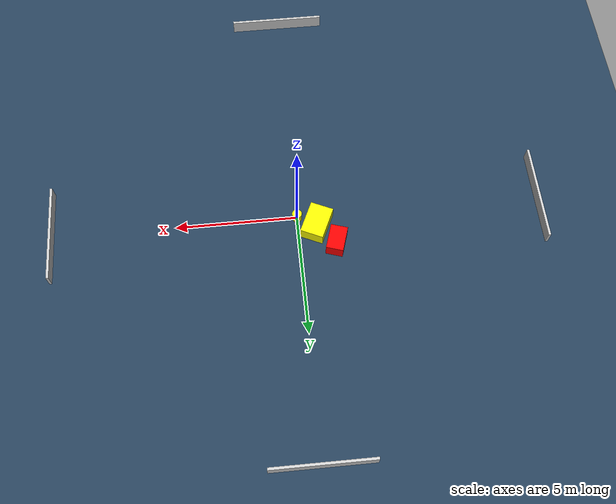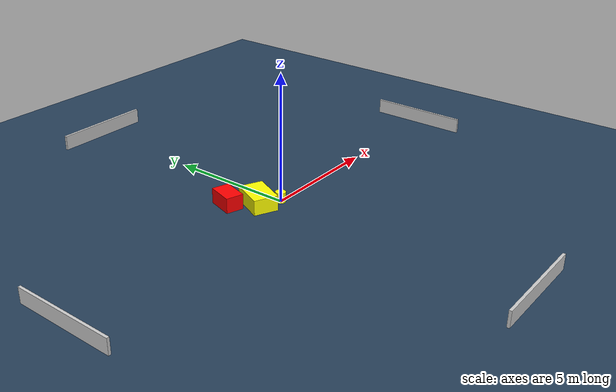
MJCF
<?xml version="1.0" ?>
<mujoco model="generated_environment">
  <option timestep="0.01" integrator="RK4" cone="elliptic"/>
  <default>
    <geom density="1"/>
  </default>
  <asset>
    <texture builtin="gradient" height="3072" name="skybox" rgb1="0.3 0.5 0.7" rgb2="0 0 0" type="skybox" width="512"/>
    <texture builtin="checker" height="300" name="groundplane" rgb1="0.2 0.3 0.4" rgb2="0.1 0.2 0.3" type="2d" width="300"/>
    <material name="groundplane" reflectance="0.2" texrepeat="5 5" texture="groundplane"/>
  </asset>
  <worldbody>
    <light dir="0 0 -1" directional="true" pos="0 0 1.5"/>
    <geom condim="3" friction="0.5 0.005 0.001" material="groundplane" name="floor" pos="0 0 0" size="0 0 0.05" type="plane"/>
    <body name="walls">
      <geom name="wall_1" condim="4" pos="-10.0 0.0 0.3" rgba="0.800000011920929 0.800000011920929 0.800000011920929 1.0" size="0.05 2.0 0.3" type="box"/>
      <geom name="wall_2" condim="4" pos="10.0 0.0 0.3" rgba="0.800000011920929 0.800000011920929 0.800000011920929 1.0" size="0.05 2.0 0.3" type="box"/>
      <geom name="wall_3" condim="4" pos="0.0 -10.0 0.3" rgba="0.800000011920929 0.800000011920929 0.800000011920929 1.0" size="2.0 0.05 0.3" type="box"/>
      <geom name="wall_4" condim="4" pos="0.0 10.0 0.3" rgba="0.800000011920929 0.800000011920929 0.800000011920929 1.0" size="2.0 0.05 0.3" type="box"/>
    </body>
    <body name="robot">
      <joint name="joint_x" type="slide" pos="0 0 0" axis="1 0 0"/>
      <joint name="joint_y" type="slide" pos="0 0 0" axis="0 1 0"/>
      <geom name="robot" type="cylinder" pos="0.0 0.0 0.2" size="0.2 0.2 0.0" mass="5.0" friction="1.0 0.005 0.0001" condim="4" rgba="1.0 1.0 0.0 1.0"/>
    </body>
    <body name="obstacle_1_movable">
      <geom name="obstacle_1_movable" condim="4" pos="-0.7665139166236394 0.441868946079265 0.3" euler="0 0 335.3270620346347" friction="0.0 0.005 0.001" rgba="1.0 1.0 0.0 1.0" size="0.4759612984918153 0.675859393078186 0.3" type="box" mass="0.1"/>
      <joint type="free"/>
    </body>
    <body name="obstacle_2_static">
      <geom name="obstacle_2_static" condim="4" pos="-1.488471343735328 1.3032297008675633 0.3" euler="0 0 252.50550254846465" friction="0.0 0.005 0.001" rgba="1.0 0.0 0.0 1.0" size="0.5214456674564718 0.3478334896461529 0.3" type="box"/>
    </body>
  </worldbody>
  <actuator>
    <motor name="actuator_x" joint="joint_x" gear="1" ctrlrange="-1 1"/>
    <motor name="actuator_y" joint="joint_y" gear="1" ctrlrange="-1 1"/>
  </actuator>
</mujoco>
